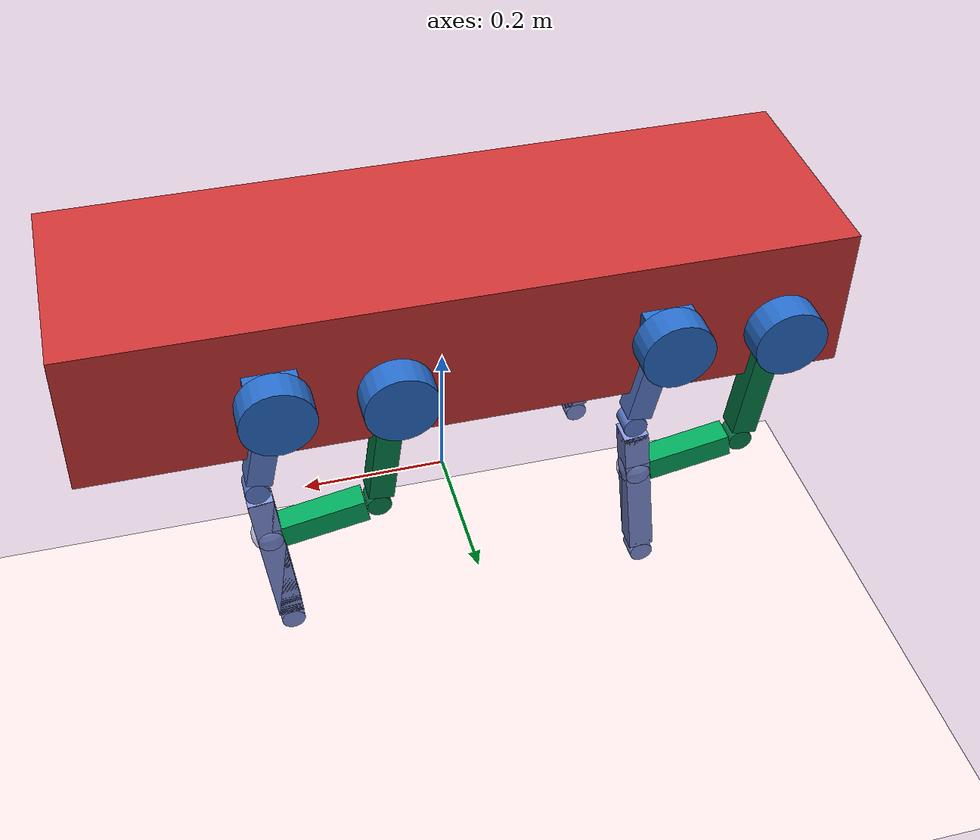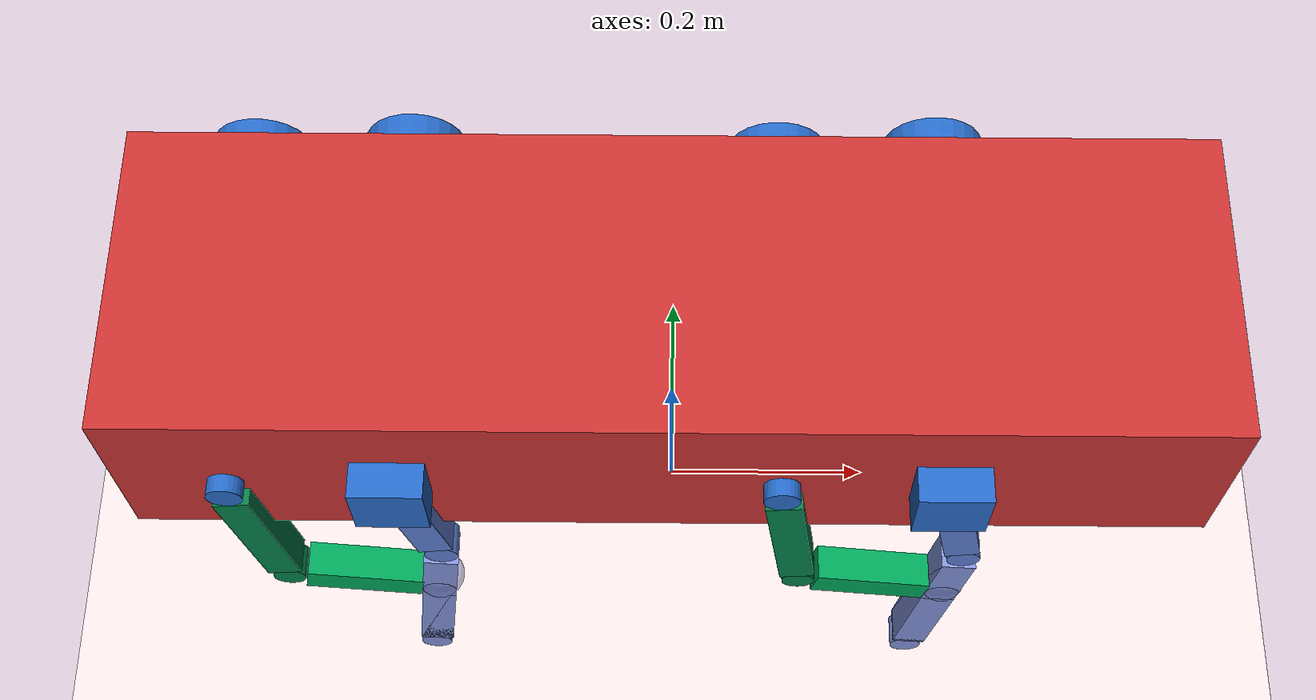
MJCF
<?xml version="1.0" encoding="utf-8"?>
<mujoco model="quadruped_torso">
  <compiler angle="radian" inertiafromgeom="true" coordinate="local" />
  <option timestep="0.01" gravity="0 0 -9.81" />
  <worldbody>
    <geom name="floor" type="plane" size="2 2 0.1" pos="0 0 -0.5" rgba="6 0.9 0.9 1" />
    <body name="torso" pos="0 0 0.32" quat="1 0 0 0">
      <geom name="torso_body" type="box" size="0.5 0.15 0.1" rgba="0.8 0.2 0.2 1" />
      <inertial pos="0 0 0" mass="2.0" diaginertia="0.1 0.2 0.1" />
      <body name="leg_front_right" pos="0.25 0.15 0">
        <geom name="G_vis0_front_right" type="box" rgba="0.1568627450980392 0.42745098039215684 0.8 1.0" contype="1" conaffinity="1" pos="0.0 0.0 0.0" quat="1.0 0.0 0.0 0.0" size="0.0335 0.0335 0.0335" />
        <inertial pos="0.0 0.0 0.0" mass="0.04903493747122909" diaginertia="3.66863057180579e-05 3.66863057180579e-05 3.66863057180579e-05" />
        <body name="L6_front_right" pos="0.0 0.0 0.0" quat="0.09853761796664233 5.490065323952282e-17 0.9951333266680702 5.490065323952282e-17">
          <joint name="Main_ground_front_right" type="hinge" axis="0 1 0" range="-3.141592653589793 3.141592653589793" damping="0.1" />
          <geom name="L6_vis0_front_right" type="box" rgba="0.37254901960784315 0.5019607843137255 0.8352941176470589 1.0" contype="1" conaffinity="1" pos="0.0 0.0 0.07649" quat="1.0 0.0 0.0 0.0" size="0.01675 0.01675 0.059735292703891774" />
          <inertial pos="0.0 0.0 0.07649" mass="0.09693685001461892" diaginertia="0.0001243657034733558 0.0001243657034733558 1.8131229988151018e-05" />
          <body name="L5_front_right" pos="3.9850810789398094e-17 0.0 0.15297058540778355" quat="0.9874789974914651 0.0 0.15775052935965425 0.0">
            <joint name="Main_knee_front_right" type="hinge" axis="0 1 0" range="-3.141592653589793 3.141592653589793" damping="0.1" />
            <geom name="L5_vis0_front_right" type="box" rgba="0.5176470588235295 0.5843137254901961 0.8705882352941177 1.0" contype="1" conaffinity="1" pos="3.122502256758253e-17 0.0 0.1258967831201417" quat="1.0 0.0 0.0 0.0" size="0.016750000417232513 0.016750000417232513 0.10914678270290917" />
            <geom name="L5_vis1_front_right" type="box" rgba="0.5176470588235295 0.5843137254901961 0.8705882352941177 1.0" contype="1" conaffinity="1" pos="1.3877787807814457e-17 0.0 0.04406387409204959" quat="1.0 0.0 0.0 0.0" size="0.016750000417232513 0.016750000417232513 0.02731387367481708" />
            <geom name="L5_vis2_front_right" type="box" rgba="0.5176470588235295 0.5843137254901961 0.8705882352941177 1.0" contype="1" conaffinity="1" pos="3.8163916471489756e-17 0.0 0.16996065721219128" quat="1.0 0.0 0.0 0.0" size="0.016750000417232513 0.016750000417232513 0.06508290861085958" />
            <inertial pos="0.0 0.0 0.11331" mass="0.20430196607254722" diaginertia="0.0318890529501516 0.03195007230862345 9.923234039844751e-05" />
            <body name="EE_front_right" pos="5.551115123125783e-17 0.0 0.2517935662402834" quat="0.05967898086042496 5.74689170874561e-17 0.9982176211846098 5.74689170874561e-17">
              <geom name="EE_vis0_front_right" type="sphere" rgba="0.6431372549019608 0.6666666666666666 0.9058823529411765 1.0" contype="1" conaffinity="1" pos="0.0 0.0 0.0" quat="1.0 0.0 0.0 0.0" size="0.002142857142857143" />
              <inertial pos="0.0 0.0 0.0" mass="2.979933439782622e-05" diaginertia="5.473347134294612e-11 5.473347134294612e-11 5.473347134294612e-11" />
            </body>
            <body name="Main_ee_L5Unit_front_right" pos="5.551115123125783e-17 0.0 0.2517935662402834" quat="0.04219941206070872 0.04219941206070862 0.705846449039542 -0.7058464490395416">
              <geom name="Main_ee_L5Unit_vis0_front_right" type="cylinder" rgba="0.5176470588235295 0.5843137254901961 0.8705882352941177 0.9" contype="1" conaffinity="1" size="0.016 0.015" />
              <inertial pos="0 0 0" mass="0.1" diaginertia="0.00065 0.00065 0.0008" />
            </body>
            <body name="Main_connection_2_L5Pseudo_front_right" pos="5.551115123125783e-17 0.0 0.08812774818409916" quat="0.7309513322872746 0.0 -0.6824295933116165 0.0">
              <geom name="Main_connection_2_L5Pseudo_vis0_front_right" type="sphere" rgba="0.5176470588235295 0.5843137254901961 0.8705882352941177 0.5" contype="1" conaffinity="1" size="0.02392857202461788" />
              <inertial pos="0 0 0" mass="0.05" diaginertia="1.145153118274651e-05 1.145153118274651e-05 1.145153118274651e-05" />
            </body>
          </body>
          <body name="Main_knee_L6Unit_front_right" pos="3.9850810789398094e-17 0.0 0.15297058540778355" quat="0.6982530954055087 0.6982530954055086 0.11154646904597909 -0.11154646904597906">
            <geom name="Main_knee_L6Unit_vis0_front_right" type="cylinder" rgba="0.37254901960784315 0.5019607843137255 0.8352941176470589 0.9" contype="1" conaffinity="1" size="0.016 0.015" />
            <inertial pos="0 0 0" mass="0.1" diaginertia="0.00065 0.00065 0.0008" />
          </body>
        </body>
        <body name="Main_ground_GActuator_front_right" pos="0.0 0.036750000000000005 0.0" quat="0.0696766178661822 0.06967661786618214 0.7036655234717202 -0.7036655234717203">
          <geom name="Main_ground_GActuator_vis0_front_right" type="cylinder" rgba="0.1568627450980392 0.42745098039215684 0.8 0.9" contype="1" conaffinity="1" size="0.048 0.02" />
          <inertial pos="0 0 0" mass="0.44" diaginertia="0.0067466666666666664 0.0067466666666666664 0.01056" />
        </body>
        <body name="Main_ground_GUnit_front_right" pos="0.0 0.0 0.0" quat="0.0696766178661822 0.06967661786618214 0.7036655234717202 -0.7036655234717203">
          <geom name="Main_ground_GUnit_vis0_front_right" type="cylinder" rgba="0.1568627450980392 0.42745098039215684 0.8 0.9" contype="1" conaffinity="1" size="0.01675 0.01675" />
          <inertial pos="0 0 0" mass="0.1" diaginertia="0.0006979166666666668 0.0006979166666666668 0.0008375000000000001" />
        </body>
        <body name="L3_front_right" pos="-0.15 0.0 -0.01" quat="0.06213744155632902 5.73091937666162e-17 0.9980676020975903 5.73091937666162e-17">
          <joint name="Ground_connection_front_right" type="hinge" axis="0 1 0" range="-3.141592653589793 3.141592653589793" damping="0.1" />
          <geom name="L3_vis0_front_right" type="box" rgba="0.01568627450980392 0.5058823529411764 0.29411764705882354 1.0" contype="1" conaffinity="1" pos="0.0 0.0 0.10078" quat="1.0 0.0 0.0 0.0" size="0.01675 0.01675 0.08402822185373188" />
          <inertial pos="0.0 0.0 0.10078" mass="0.136358771676357" diaginertia="0.0003336837577936235 0.0003336837577936235 2.5504771918965276e-05" />
          <body name="L4_front_right" pos="8.326672684688674e-17 0.0 0.20155644370746378" quat="0.8085047933142612 0.0 -0.5884895914014655 0.0">
            <joint name="branch_1_front_right" type="hinge" axis="0 1 0" range="-3.141592653589793 3.141592653589793" damping="0.1" />
            <geom name="L4_vis0_front_right" type="box" rgba="0.0 0.6627450980392157 0.3607843137254902 1.0" contype="1" conaffinity="1" pos="-0.0 0.0 0.07355" quat="1.0 0.0 0.0 0.0" size="0.01675 0.01675 0.056796753837270064" />
            <inertial pos="-0.0 0.0 0.07355" mass="0.09216826701314518" diaginertia="0.0001077273072689468 0.0001077273072689468 1.723930627591703e-05" />
            <body name="Main_connection_2_L4Pseudo_front_right" pos="-2.7755575615628914e-17 0.0 0.14709350767454013" quat="1.0 0.0 0.0 0.0">
              <joint name="Main_connection_2_L4_revolute_front_right" type="hinge" axis="0 1 0" range="-3.141592653589793 3.141592653589793" damping="0.1" />
              <geom name="Main_connection_2_L4Pseudo_vis0_front_right" type="sphere" rgba="0.0 0.6627450980392157 0.3607843137254902 0.5" contype="1" conaffinity="1" size="0.02392857142857143" />
              <inertial pos="0 0 0" mass="0.05" diaginertia="1.1451530612244902e-05 1.1451530612244902e-05 1.1451530612244902e-05" />
            </body>
          </body>
          <body name="branch_1_L3Unit_front_right" pos="8.326672684688674e-17 0.0 0.20155644370746378" quat="0.5716992219743421 0.571699221974342 -0.4161249807376769 0.4161249807376769">
            <geom name="branch_1_L3Unit_vis0_front_right" type="cylinder" rgba="0.01568627450980392 0.5058823529411764 0.29411764705882354 0.9" contype="1" conaffinity="1" size="0.016 0.015" />
            <inertial pos="0 0 0" mass="0.1" diaginertia="0.00065 0.00065 0.0008" />
          </body>
        </body>
        <body name="Ground_connection_GActuator_front_right" pos="-0.15 0.036750000000000005 -0.01" quat="0.04393780629006307 0.04393780629006299 0.7057403695258029 -0.705740369525803">
          <geom name="Ground_connection_GActuator_vis0_front_right" type="cylinder" rgba="0.1568627450980392 0.42745098039215684 0.8 0.9" contype="1" conaffinity="1" size="0.048 0.02" />
          <inertial pos="0 0 0" mass="0.44" diaginertia="0.0067466666666666664 0.0067466666666666664 0.01056" />
        </body>
        <body name="Ground_connection_GUnit_front_right" pos="-0.15 0.0 -0.01" quat="0.04393780629006307 0.04393780629006299 0.7057403695258029 -0.705740369525803">
          <geom name="Ground_connection_GUnit_vis0_front_right" type="cylinder" rgba="0.1568627450980392 0.42745098039215684 0.8 0.9" contype="1" conaffinity="1" size="0.01675 0.01675" />
          <inertial pos="0 0 0" mass="0.1" diaginertia="0.0006979166666666668 0.0006979166666666668 0.0008375000000000001" />
        </body>
      </body>
      <body name="leg_front_left" pos="0.25 -0.15 0">
        <geom name="G_vis0_front_left" type="box" rgba="0.1568627450980392 0.42745098039215684 0.8 1.0" contype="1" conaffinity="1" pos="0.0 0.0 0.0" quat="1.0 0.0 0.0 0.0" size="0.0335 0.0335 0.0335" />
        <inertial pos="0.0 0.0 0.0" mass="0.04903493747122909" diaginertia="3.66863057180579e-05 3.66863057180579e-05 3.66863057180579e-05" />
        <body name="L6_front_left" pos="0.0 0.0 0.0" quat="0.09853761796664233 5.490065323952282e-17 0.9951333266680702 5.490065323952282e-17">
          <joint name="Main_ground_front_left" type="hinge" axis="0 1 0" range="-3.141592653589793 3.141592653589793" damping="0.1" />
          <geom name="L6_vis0_front_left" type="box" rgba="0.37254901960784315 0.5019607843137255 0.8352941176470589 1.0" contype="1" conaffinity="1" pos="0.0 0.0 0.07649" quat="1.0 0.0 0.0 0.0" size="0.01675 0.01675 0.059735292703891774" />
          <inertial pos="0.0 0.0 0.07649" mass="0.09693685001461892" diaginertia="0.0001243657034733558 0.0001243657034733558 1.8131229988151018e-05" />
          <body name="L5_front_left" pos="3.9850810789398094e-17 0.0 0.15297058540778355" quat="0.9874789974914651 0.0 0.15775052935965425 0.0">
            <joint name="Main_knee_front_left" type="hinge" axis="0 1 0" range="-3.141592653589793 3.141592653589793" damping="0.1" />
            <geom name="L5_vis0_front_left" type="box" rgba="0.5176470588235295 0.5843137254901961 0.8705882352941177 1.0" contype="1" conaffinity="1" pos="3.122502256758253e-17 0.0 0.1258967831201417" quat="1.0 0.0 0.0 0.0" size="0.016750000417232513 0.016750000417232513 0.10914678270290917" />
            <geom name="L5_vis1_front_left" type="box" rgba="0.5176470588235295 0.5843137254901961 0.8705882352941177 1.0" contype="1" conaffinity="1" pos="1.3877787807814457e-17 0.0 0.04406387409204959" quat="1.0 0.0 0.0 0.0" size="0.016750000417232513 0.016750000417232513 0.02731387367481708" />
            <geom name="L5_vis2_front_left" type="box" rgba="0.5176470588235295 0.5843137254901961 0.8705882352941177 1.0" contype="1" conaffinity="1" pos="3.8163916471489756e-17 0.0 0.16996065721219128" quat="1.0 0.0 0.0 0.0" size="0.016750000417232513 0.016750000417232513 0.06508290861085958" />
            <inertial pos="0.0 0.0 0.11331" mass="0.20430196607254722" diaginertia="0.0318890529501516 0.03195007230862345 9.923234039844751e-05" />
            <body name="EE_front_left" pos="5.551115123125783e-17 0.0 0.2517935662402834" quat="0.05967898086042496 5.74689170874561e-17 0.9982176211846098 5.74689170874561e-17">
              <geom name="EE_vis0_front_left" type="sphere" rgba="0.6431372549019608 0.6666666666666666 0.9058823529411765 1.0" contype="1" conaffinity="1" pos="0.0 0.0 0.0" quat="1.0 0.0 0.0 0.0" size="0.002142857142857143" />
              <inertial pos="0.0 0.0 0.0" mass="2.979933439782622e-05" diaginertia="5.473347134294612e-11 5.473347134294612e-11 5.473347134294612e-11" />
            </body>
            <body name="Main_ee_L5Unit_front_left" pos="5.551115123125783e-17 0.0 0.2517935662402834" quat="0.04219941206070872 0.04219941206070862 0.705846449039542 -0.7058464490395416">
              <geom name="Main_ee_L5Unit_vis0_front_left" type="cylinder" rgba="0.5176470588235295 0.5843137254901961 0.8705882352941177 0.9" contype="1" conaffinity="1" size="0.016 0.015" />
              <inertial pos="0 0 0" mass="0.1" diaginertia="0.00065 0.00065 0.0008" />
            </body>
            <body name="Main_connection_2_L5Pseudo_front_left" pos="5.551115123125783e-17 0.0 0.08812774818409916" quat="0.7309513322872746 0.0 -0.6824295933116165 0.0">
              <geom name="Main_connection_2_L5Pseudo_vis0_front_left" type="sphere" rgba="0.5176470588235295 0.5843137254901961 0.8705882352941177 0.5" contype="1" conaffinity="1" size="0.02392857202461788" />
              <inertial pos="0 0 0" mass="0.05" diaginertia="1.145153118274651e-05 1.145153118274651e-05 1.145153118274651e-05" />
            </body>
          </body>
          <body name="Main_knee_L6Unit_front_left" pos="3.9850810789398094e-17 0.0 0.15297058540778355" quat="0.6982530954055087 0.6982530954055086 0.11154646904597909 -0.11154646904597906">
            <geom name="Main_knee_L6Unit_vis0_front_left" type="cylinder" rgba="0.37254901960784315 0.5019607843137255 0.8352941176470589 0.9" contype="1" conaffinity="1" size="0.016 0.015" />
            <inertial pos="0 0 0" mass="0.1" diaginertia="0.00065 0.00065 0.0008" />
          </body>
        </body>
        <body name="Main_ground_GActuator_front_left" pos="0.0 0.036750000000000005 0.0" quat="0.0696766178661822 0.06967661786618214 0.7036655234717202 -0.7036655234717203">
          <geom name="Main_ground_GActuator_vis0_front_left" type="cylinder" rgba="0.1568627450980392 0.42745098039215684 0.8 0.9" contype="1" conaffinity="1" size="0.048 0.02" />
          <inertial pos="0 0 0" mass="0.44" diaginertia="0.0067466666666666664 0.0067466666666666664 0.01056" />
        </body>
        <body name="Main_ground_GUnit_front_left" pos="0.0 0.0 0.0" quat="0.0696766178661822 0.06967661786618214 0.7036655234717202 -0.7036655234717203">
          <geom name="Main_ground_GUnit_vis0_front_left" type="cylinder" rgba="0.1568627450980392 0.42745098039215684 0.8 0.9" contype="1" conaffinity="1" size="0.01675 0.01675" />
          <inertial pos="0 0 0" mass="0.1" diaginertia="0.0006979166666666668 0.0006979166666666668 0.0008375000000000001" />
        </body>
        <body name="L3_front_left" pos="-0.15 0.0 -0.01" quat="0.06213744155632902 5.73091937666162e-17 0.9980676020975903 5.73091937666162e-17">
          <joint name="Ground_connection_front_left" type="hinge" axis="0 1 0" range="-3.141592653589793 3.141592653589793" damping="0.1" />
          <geom name="L3_vis0_front_left" type="box" rgba="0.01568627450980392 0.5058823529411764 0.29411764705882354 1.0" contype="1" conaffinity="1" pos="0.0 0.0 0.10078" quat="1.0 0.0 0.0 0.0" size="0.01675 0.01675 0.08402822185373188" />
          <inertial pos="0.0 0.0 0.10078" mass="0.136358771676357" diaginertia="0.0003336837577936235 0.0003336837577936235 2.5504771918965276e-05" />
          <body name="L4_front_left" pos="8.326672684688674e-17 0.0 0.20155644370746378" quat="0.8085047933142612 0.0 -0.5884895914014655 0.0">
            <joint name="branch_1_front_left" type="hinge" axis="0 1 0" range="-3.141592653589793 3.141592653589793" damping="0.1" />
            <geom name="L4_vis0_front_left" type="box" rgba="0.0 0.6627450980392157 0.3607843137254902 1.0" contype="1" conaffinity="1" pos="-0.0 0.0 0.07355" quat="1.0 0.0 0.0 0.0" size="0.01675 0.01675 0.056796753837270064" />
            <inertial pos="-0.0 0.0 0.07355" mass="0.09216826701314518" diaginertia="0.0001077273072689468 0.0001077273072689468 1.723930627591703e-05" />
            <body name="Main_connection_2_L4Pseudo_front_left" pos="-2.7755575615628914e-17 0.0 0.14709350767454013" quat="1.0 0.0 0.0 0.0">
              <joint name="Main_connection_2_L4_revolute_front_left" type="hinge" axis="0 1 0" range="-3.141592653589793 3.141592653589793" damping="0.1" />
              <geom name="Main_connection_2_L4Pseudo_vis0_front_left" type="sphere" rgba="0.0 0.6627450980392157 0.3607843137254902 0.5" contype="1" conaffinity="1" size="0.02392857142857143" />
              <inertial pos="0 0 0" mass="0.05" diaginertia="1.1451530612244902e-05 1.1451530612244902e-05 1.1451530612244902e-05" />
            </body>
          </body>
          <body name="branch_1_L3Unit_front_left" pos="8.326672684688674e-17 0.0 0.20155644370746378" quat="0.5716992219743421 0.571699221974342 -0.4161249807376769 0.4161249807376769">
            <geom name="branch_1_L3Unit_vis0_front_left" type="cylinder" rgba="0.01568627450980392 0.5058823529411764 0.29411764705882354 0.9" contype="1" conaffinity="1" size="0.016 0.015" />
            <inertial pos="0 0 0" mass="0.1" diaginertia="0.00065 0.00065 0.0008" />
          </body>
        </body>
        <body name="Ground_connection_GActuator_front_left" pos="-0.15 0.036750000000000005 -0.01" quat="0.04393780629006307 0.04393780629006299 0.7057403695258029 -0.705740369525803">
          <geom name="Ground_connection_GActuator_vis0_front_left" type="cylinder" rgba="0.1568627450980392 0.42745098039215684 0.8 0.9" contype="1" conaffinity="1" size="0.048 0.02" />
          <inertial pos="0 0 0" mass="0.44" diaginertia="0.0067466666666666664 0.0067466666666666664 0.01056" />
        </body>
        <body name="Ground_connection_GUnit_front_left" pos="-0.15 0.0 -0.01" quat="0.04393780629006307 0.04393780629006299 0.7057403695258029 -0.705740369525803">
          <geom name="Ground_connection_GUnit_vis0_front_left" type="cylinder" rgba="0.1568627450980392 0.42745098039215684 0.8 0.9" contype="1" conaffinity="1" size="0.01675 0.01675" />
          <inertial pos="0 0 0" mass="0.1" diaginertia="0.0006979166666666668 0.0006979166666666668 0.0008375000000000001" />
        </body>
      </body>
      <body name="leg_rear_right" pos="-0.25 0.15 0">
        <geom name="G_vis0_rear_right" type="box" rgba="0.1568627450980392 0.42745098039215684 0.8 1.0" contype="1" conaffinity="1" pos="0.0 0.0 0.0" quat="1.0 0.0 0.0 0.0" size="0.0335 0.0335 0.0335" />
        <inertial pos="0.0 0.0 0.0" mass="0.04903493747122909" diaginertia="3.66863057180579e-05 3.66863057180579e-05 3.66863057180579e-05" />
        <body name="L6_rear_right" pos="0.0 0.0 0.0" quat="0.09853761796664233 5.490065323952282e-17 0.9951333266680702 5.490065323952282e-17">
          <joint name="Main_ground_rear_right" type="hinge" axis="0 1 0" range="-3.141592653589793 3.141592653589793" damping="0.1" />
          <geom name="L6_vis0_rear_right" type="box" rgba="0.37254901960784315 0.5019607843137255 0.8352941176470589 1.0" contype="1" conaffinity="1" pos="0.0 0.0 0.07649" quat="1.0 0.0 0.0 0.0" size="0.01675 0.01675 0.059735292703891774" />
          <inertial pos="0.0 0.0 0.07649" mass="0.09693685001461892" diaginertia="0.0001243657034733558 0.0001243657034733558 1.8131229988151018e-05" />
          <body name="L5_rear_right" pos="3.9850810789398094e-17 0.0 0.15297058540778355" quat="0.9874789974914651 0.0 0.15775052935965425 0.0">
            <joint name="Main_knee_rear_right" type="hinge" axis="0 1 0" range="-3.141592653589793 3.141592653589793" damping="0.1" />
            <geom name="L5_vis0_rear_right" type="box" rgba="0.5176470588235295 0.5843137254901961 0.8705882352941177 1.0" contype="1" conaffinity="1" pos="3.122502256758253e-17 0.0 0.1258967831201417" quat="1.0 0.0 0.0 0.0" size="0.016750000417232513 0.016750000417232513 0.10914678270290917" />
            <geom name="L5_vis1_rear_right" type="box" rgba="0.5176470588235295 0.5843137254901961 0.8705882352941177 1.0" contype="1" conaffinity="1" pos="1.3877787807814457e-17 0.0 0.04406387409204959" quat="1.0 0.0 0.0 0.0" size="0.016750000417232513 0.016750000417232513 0.02731387367481708" />
            <geom name="L5_vis2_rear_right" type="box" rgba="0.5176470588235295 0.5843137254901961 0.8705882352941177 1.0" contype="1" conaffinity="1" pos="3.8163916471489756e-17 0.0 0.16996065721219128" quat="1.0 0.0 0.0 0.0" size="0.016750000417232513 0.016750000417232513 0.06508290861085958" />
            <inertial pos="0.0 0.0 0.11331" mass="0.20430196607254722" diaginertia="0.0318890529501516 0.03195007230862345 9.923234039844751e-05" />
            <body name="EE_rear_right" pos="5.551115123125783e-17 0.0 0.2517935662402834" quat="0.05967898086042496 5.74689170874561e-17 0.9982176211846098 5.74689170874561e-17">
              <geom name="EE_vis0_rear_right" type="sphere" rgba="0.6431372549019608 0.6666666666666666 0.9058823529411765 1.0" contype="1" conaffinity="1" pos="0.0 0.0 0.0" quat="1.0 0.0 0.0 0.0" size="0.002142857142857143" />
              <inertial pos="0.0 0.0 0.0" mass="2.979933439782622e-05" diaginertia="5.473347134294612e-11 5.473347134294612e-11 5.473347134294612e-11" />
            </body>
            <body name="Main_ee_L5Unit_rear_right" pos="5.551115123125783e-17 0.0 0.2517935662402834" quat="0.04219941206070872 0.04219941206070862 0.705846449039542 -0.7058464490395416">
              <geom name="Main_ee_L5Unit_vis0_rear_right" type="cylinder" rgba="0.5176470588235295 0.5843137254901961 0.8705882352941177 0.9" contype="1" conaffinity="1" size="0.016 0.015" />
              <inertial pos="0 0 0" mass="0.1" diaginertia="0.00065 0.00065 0.0008" />
            </body>
            <body name="Main_connection_2_L5Pseudo_rear_right" pos="5.551115123125783e-17 0.0 0.08812774818409916" quat="0.7309513322872746 0.0 -0.6824295933116165 0.0">
              <geom name="Main_connection_2_L5Pseudo_vis0_rear_right" type="sphere" rgba="0.5176470588235295 0.5843137254901961 0.8705882352941177 0.5" contype="1" conaffinity="1" size="0.02392857202461788" />
              <inertial pos="0 0 0" mass="0.05" diaginertia="1.145153118274651e-05 1.145153118274651e-05 1.145153118274651e-05" />
            </body>
          </body>
          <body name="Main_knee_L6Unit_rear_right" pos="3.9850810789398094e-17 0.0 0.15297058540778355" quat="0.6982530954055087 0.6982530954055086 0.11154646904597909 -0.11154646904597906">
            <geom name="Main_knee_L6Unit_vis0_rear_right" type="cylinder" rgba="0.37254901960784315 0.5019607843137255 0.8352941176470589 0.9" contype="1" conaffinity="1" size="0.016 0.015" />
            <inertial pos="0 0 0" mass="0.1" diaginertia="0.00065 0.00065 0.0008" />
          </body>
        </body>
        <body name="Main_ground_GActuator_rear_right" pos="0.0 0.036750000000000005 0.0" quat="0.0696766178661822 0.06967661786618214 0.7036655234717202 -0.7036655234717203">
          <geom name="Main_ground_GActuator_vis0_rear_right" type="cylinder" rgba="0.1568627450980392 0.42745098039215684 0.8 0.9" contype="1" conaffinity="1" size="0.048 0.02" />
          <inertial pos="0 0 0" mass="0.44" diaginertia="0.0067466666666666664 0.0067466666666666664 0.01056" />
        </body>
        <body name="Main_ground_GUnit_rear_right" pos="0.0 0.0 0.0" quat="0.0696766178661822 0.06967661786618214 0.7036655234717202 -0.7036655234717203">
          <geom name="Main_ground_GUnit_vis0_rear_right" type="cylinder" rgba="0.1568627450980392 0.42745098039215684 0.8 0.9" contype="1" conaffinity="1" size="0.01675 0.01675" />
          <inertial pos="0 0 0" mass="0.1" diaginertia="0.0006979166666666668 0.0006979166666666668 0.0008375000000000001" />
        </body>
        <body name="L3_rear_right" pos="-0.15 0.0 -0.01" quat="0.06213744155632902 5.73091937666162e-17 0.9980676020975903 5.73091937666162e-17">
          <joint name="Ground_connection_rear_right" type="hinge" axis="0 1 0" range="-3.141592653589793 3.141592653589793" damping="0.1" />
          <geom name="L3_vis0_rear_right" type="box" rgba="0.01568627450980392 0.5058823529411764 0.29411764705882354 1.0" contype="1" conaffinity="1" pos="0.0 0.0 0.10078" quat="1.0 0.0 0.0 0.0" size="0.01675 0.01675 0.08402822185373188" />
          <inertial pos="0.0 0.0 0.10078" mass="0.136358771676357" diaginertia="0.0003336837577936235 0.0003336837577936235 2.5504771918965276e-05" />
          <body name="L4_rear_right" pos="8.326672684688674e-17 0.0 0.20155644370746378" quat="0.8085047933142612 0.0 -0.5884895914014655 0.0">
            <joint name="branch_1_rear_right" type="hinge" axis="0 1 0" range="-3.141592653589793 3.141592653589793" damping="0.1" />
            <geom name="L4_vis0_rear_right" type="box" rgba="0.0 0.6627450980392157 0.3607843137254902 1.0" contype="1" conaffinity="1" pos="-0.0 0.0 0.07355" quat="1.0 0.0 0.0 0.0" size="0.01675 0.01675 0.056796753837270064" />
            <inertial pos="-0.0 0.0 0.07355" mass="0.09216826701314518" diaginertia="0.0001077273072689468 0.0001077273072689468 1.723930627591703e-05" />
            <body name="Main_connection_2_L4Pseudo_rear_right" pos="-2.7755575615628914e-17 0.0 0.14709350767454013" quat="1.0 0.0 0.0 0.0">
              <joint name="Main_connection_2_L4_revolute_rear_right" type="hinge" axis="0 1 0" range="-3.141592653589793 3.141592653589793" damping="0.1" />
              <geom name="Main_connection_2_L4Pseudo_vis0_rear_right" type="sphere" rgba="0.0 0.6627450980392157 0.3607843137254902 0.5" contype="1" conaffinity="1" size="0.02392857142857143" />
              <inertial pos="0 0 0" mass="0.05" diaginertia="1.1451530612244902e-05 1.1451530612244902e-05 1.1451530612244902e-05" />
            </body>
          </body>
          <body name="branch_1_L3Unit_rear_right" pos="8.326672684688674e-17 0.0 0.20155644370746378" quat="0.5716992219743421 0.571699221974342 -0.4161249807376769 0.4161249807376769">
            <geom name="branch_1_L3Unit_vis0_rear_right" type="cylinder" rgba="0.01568627450980392 0.5058823529411764 0.29411764705882354 0.9" contype="1" conaffinity="1" size="0.016 0.015" />
            <inertial pos="0 0 0" mass="0.1" diaginertia="0.00065 0.00065 0.0008" />
          </body>
        </body>
        <body name="Ground_connection_GActuator_rear_right" pos="-0.15 0.036750000000000005 -0.01" quat="0.04393780629006307 0.04393780629006299 0.7057403695258029 -0.705740369525803">
          <geom name="Ground_connection_GActuator_vis0_rear_right" type="cylinder" rgba="0.1568627450980392 0.42745098039215684 0.8 0.9" contype="1" conaffinity="1" size="0.048 0.02" />
          <inertial pos="0 0 0" mass="0.44" diaginertia="0.0067466666666666664 0.0067466666666666664 0.01056" />
        </body>
        <body name="Ground_connection_GUnit_rear_right" pos="-0.15 0.0 -0.01" quat="0.04393780629006307 0.04393780629006299 0.7057403695258029 -0.705740369525803">
          <geom name="Ground_connection_GUnit_vis0_rear_right" type="cylinder" rgba="0.1568627450980392 0.42745098039215684 0.8 0.9" contype="1" conaffinity="1" size="0.01675 0.01675" />
          <inertial pos="0 0 0" mass="0.1" diaginertia="0.0006979166666666668 0.0006979166666666668 0.0008375000000000001" />
        </body>
      </body>
      <body name="leg_rear_left" pos="-0.25 -0.15 0">
        <geom name="G_vis0_rear_left" type="box" rgba="0.1568627450980392 0.42745098039215684 0.8 1.0" contype="1" conaffinity="1" pos="0.0 0.0 0.0" quat="1.0 0.0 0.0 0.0" size="0.0335 0.0335 0.0335" />
        <inertial pos="0.0 0.0 0.0" mass="0.04903493747122909" diaginertia="3.66863057180579e-05 3.66863057180579e-05 3.66863057180579e-05" />
        <body name="L6_rear_left" pos="0.0 0.0 0.0" quat="0.09853761796664233 5.490065323952282e-17 0.9951333266680702 5.490065323952282e-17">
          <joint name="Main_ground_rear_left" type="hinge" axis="0 1 0" range="-3.141592653589793 3.141592653589793" damping="0.1" />
          <geom name="L6_vis0_rear_left" type="box" rgba="0.37254901960784315 0.5019607843137255 0.8352941176470589 1.0" contype="1" conaffinity="1" pos="0.0 0.0 0.07649" quat="1.0 0.0 0.0 0.0" size="0.01675 0.01675 0.059735292703891774" />
          <inertial pos="0.0 0.0 0.07649" mass="0.09693685001461892" diaginertia="0.0001243657034733558 0.0001243657034733558 1.8131229988151018e-05" />
          <body name="L5_rear_left" pos="3.9850810789398094e-17 0.0 0.15297058540778355" quat="0.9874789974914651 0.0 0.15775052935965425 0.0">
            <joint name="Main_knee_rear_left" type="hinge" axis="0 1 0" range="-3.141592653589793 3.141592653589793" damping="0.1" />
            <geom name="L5_vis0_rear_left" type="box" rgba="0.5176470588235295 0.5843137254901961 0.8705882352941177 1.0" contype="1" conaffinity="1" pos="3.122502256758253e-17 0.0 0.1258967831201417" quat="1.0 0.0 0.0 0.0" size="0.016750000417232513 0.016750000417232513 0.10914678270290917" />
            <geom name="L5_vis1_rear_left" type="box" rgba="0.5176470588235295 0.5843137254901961 0.8705882352941177 1.0" contype="1" conaffinity="1" pos="1.3877787807814457e-17 0.0 0.04406387409204959" quat="1.0 0.0 0.0 0.0" size="0.016750000417232513 0.016750000417232513 0.02731387367481708" />
            <geom name="L5_vis2_rear_left" type="box" rgba="0.5176470588235295 0.5843137254901961 0.8705882352941177 1.0" contype="1" conaffinity="1" pos="3.8163916471489756e-17 0.0 0.16996065721219128" quat="1.0 0.0 0.0 0.0" size="0.016750000417232513 0.016750000417232513 0.06508290861085958" />
            <inertial pos="0.0 0.0 0.11331" mass="0.20430196607254722" diaginertia="0.0318890529501516 0.03195007230862345 9.923234039844751e-05" />
            <body name="EE_rear_left" pos="5.551115123125783e-17 0.0 0.2517935662402834" quat="0.05967898086042496 5.74689170874561e-17 0.9982176211846098 5.74689170874561e-17">
              <geom name="EE_vis0_rear_left" type="sphere" rgba="0.6431372549019608 0.6666666666666666 0.9058823529411765 1.0" contype="1" conaffinity="1" pos="0.0 0.0 0.0" quat="1.0 0.0 0.0 0.0" size="0.002142857142857143" />
              <inertial pos="0.0 0.0 0.0" mass="2.979933439782622e-05" diaginertia="5.473347134294612e-11 5.473347134294612e-11 5.473347134294612e-11" />
            </body>
            <body name="Main_ee_L5Unit_rear_left" pos="5.551115123125783e-17 0.0 0.2517935662402834" quat="0.04219941206070872 0.04219941206070862 0.705846449039542 -0.7058464490395416">
              <geom name="Main_ee_L5Unit_vis0_rear_left" type="cylinder" rgba="0.5176470588235295 0.5843137254901961 0.8705882352941177 0.9" contype="1" conaffinity="1" size="0.016 0.015" />
              <inertial pos="0 0 0" mass="0.1" diaginertia="0.00065 0.00065 0.0008" />
            </body>
            <body name="Main_connection_2_L5Pseudo_rear_left" pos="5.551115123125783e-17 0.0 0.08812774818409916" quat="0.7309513322872746 0.0 -0.6824295933116165 0.0">
              <geom name="Main_connection_2_L5Pseudo_vis0_rear_left" type="sphere" rgba="0.5176470588235295 0.5843137254901961 0.8705882352941177 0.5" contype="1" conaffinity="1" size="0.02392857202461788" />
              <inertial pos="0 0 0" mass="0.05" diaginertia="1.145153118274651e-05 1.145153118274651e-05 1.145153118274651e-05" />
            </body>
          </body>
          <body name="Main_knee_L6Unit_rear_left" pos="3.9850810789398094e-17 0.0 0.15297058540778355" quat="0.6982530954055087 0.6982530954055086 0.11154646904597909 -0.11154646904597906">
            <geom name="Main_knee_L6Unit_vis0_rear_left" type="cylinder" rgba="0.37254901960784315 0.5019607843137255 0.8352941176470589 0.9" contype="1" conaffinity="1" size="0.016 0.015" />
            <inertial pos="0 0 0" mass="0.1" diaginertia="0.00065 0.00065 0.0008" />
          </body>
        </body>
        <body name="Main_ground_GActuator_rear_left" pos="0.0 0.036750000000000005 0.0" quat="0.0696766178661822 0.06967661786618214 0.7036655234717202 -0.7036655234717203">
          <geom name="Main_ground_GActuator_vis0_rear_left" type="cylinder" rgba="0.1568627450980392 0.42745098039215684 0.8 0.9" contype="1" conaffinity="1" size="0.048 0.02" />
          <inertial pos="0 0 0" mass="0.44" diaginertia="0.0067466666666666664 0.0067466666666666664 0.01056" />
        </body>
        <body name="Main_ground_GUnit_rear_left" pos="0.0 0.0 0.0" quat="0.0696766178661822 0.06967661786618214 0.7036655234717202 -0.7036655234717203">
          <geom name="Main_ground_GUnit_vis0_rear_left" type="cylinder" rgba="0.1568627450980392 0.42745098039215684 0.8 0.9" contype="1" conaffinity="1" size="0.01675 0.01675" />
          <inertial pos="0 0 0" mass="0.1" diaginertia="0.0006979166666666668 0.0006979166666666668 0.0008375000000000001" />
        </body>
        <body name="L3_rear_left" pos="-0.15 0.0 -0.01" quat="0.06213744155632902 5.73091937666162e-17 0.9980676020975903 5.73091937666162e-17">
          <joint name="Ground_connection_rear_left" type="hinge" axis="0 1 0" range="-3.141592653589793 3.141592653589793" damping="0.1" />
          <geom name="L3_vis0_rear_left" type="box" rgba="0.01568627450980392 0.5058823529411764 0.29411764705882354 1.0" contype="1" conaffinity="1" pos="0.0 0.0 0.10078" quat="1.0 0.0 0.0 0.0" size="0.01675 0.01675 0.08402822185373188" />
          <inertial pos="0.0 0.0 0.10078" mass="0.136358771676357" diaginertia="0.0003336837577936235 0.0003336837577936235 2.5504771918965276e-05" />
          <body name="L4_rear_left" pos="8.326672684688674e-17 0.0 0.20155644370746378" quat="0.8085047933142612 0.0 -0.5884895914014655 0.0">
            <joint name="branch_1_rear_left" type="hinge" axis="0 1 0" range="-3.141592653589793 3.141592653589793" damping="0.1" />
            <geom name="L4_vis0_rear_left" type="box" rgba="0.0 0.6627450980392157 0.3607843137254902 1.0" contype="1" conaffinity="1" pos="-0.0 0.0 0.07355" quat="1.0 0.0 0.0 0.0" size="0.01675 0.01675 0.056796753837270064" />
            <inertial pos="-0.0 0.0 0.07355" mass="0.09216826701314518" diaginertia="0.0001077273072689468 0.0001077273072689468 1.723930627591703e-05" />
            <body name="Main_connection_2_L4Pseudo_rear_left" pos="-2.7755575615628914e-17 0.0 0.14709350767454013" quat="1.0 0.0 0.0 0.0">
              <joint name="Main_connection_2_L4_revolute_rear_left" type="hinge" axis="0 1 0" range="-3.141592653589793 3.141592653589793" damping="0.1" />
              <geom name="Main_connection_2_L4Pseudo_vis0_rear_left" type="sphere" rgba="0.0 0.6627450980392157 0.3607843137254902 0.5" contype="1" conaffinity="1" size="0.02392857142857143" />
              <inertial pos="0 0 0" mass="0.05" diaginertia="1.1451530612244902e-05 1.1451530612244902e-05 1.1451530612244902e-05" />
            </body>
          </body>
          <body name="branch_1_L3Unit_rear_left" pos="8.326672684688674e-17 0.0 0.20155644370746378" quat="0.5716992219743421 0.571699221974342 -0.4161249807376769 0.4161249807376769">
            <geom name="branch_1_L3Unit_vis0_rear_left" type="cylinder" rgba="0.01568627450980392 0.5058823529411764 0.29411764705882354 0.9" contype="1" conaffinity="1" size="0.016 0.015" />
            <inertial pos="0 0 0" mass="0.1" diaginertia="0.00065 0.00065 0.0008" />
          </body>
        </body>
        <body name="Ground_connection_GActuator_rear_left" pos="-0.15 0.036750000000000005 -0.01" quat="0.04393780629006307 0.04393780629006299 0.7057403695258029 -0.705740369525803">
          <geom name="Ground_connection_GActuator_vis0_rear_left" type="cylinder" rgba="0.1568627450980392 0.42745098039215684 0.8 0.9" contype="1" conaffinity="1" size="0.048 0.02" />
          <inertial pos="0 0 0" mass="0.44" diaginertia="0.0067466666666666664 0.0067466666666666664 0.01056" />
        </body>
        <body name="Ground_connection_GUnit_rear_left" pos="-0.15 0.0 -0.01" quat="0.04393780629006307 0.04393780629006299 0.7057403695258029 -0.705740369525803">
          <geom name="Ground_connection_GUnit_vis0_rear_left" type="cylinder" rgba="0.1568627450980392 0.42745098039215684 0.8 0.9" contype="1" conaffinity="1" size="0.01675 0.01675" />
          <inertial pos="0 0 0" mass="0.1" diaginertia="0.0006979166666666668 0.0006979166666666668 0.0008375000000000001" />
        </body>
      </body>
    </body>
  </worldbody>
  <actuator>
    <motor name="Main_ground_motor_front_right" joint="Main_ground_front_right" gear="80" ctrlrange="-1.0 1.0" forcerange="-20 20" />
    <motor name="Ground_connection_motor_front_right" joint="Ground_connection_front_right" gear="80" ctrlrange="-1.0 1.0" forcerange="-20 20" />
    <motor name="Main_ground_motor_front_left" joint="Main_ground_front_left" gear="80" ctrlrange="-1.0 1.0" forcerange="-20 20" />
    <motor name="Ground_connection_motor_front_left" joint="Ground_connection_front_left" gear="80" ctrlrange="-1.0 1.0" forcerange="-20 20" />
    <motor name="Main_ground_motor_rear_right" joint="Main_ground_rear_right" gear="80" ctrlrange="-1.0 1.0" forcerange="-20 20" />
    <motor name="Ground_connection_motor_rear_right" joint="Ground_connection_rear_right" gear="80" ctrlrange="-1.0 1.0" forcerange="-20 20" />
    <motor name="Main_ground_motor_rear_left" joint="Main_ground_rear_left" gear="80" ctrlrange="-1.0 1.0" forcerange="-20 20" />
    <motor name="Ground_connection_motor_rear_left" joint="Ground_connection_rear_left" gear="80" ctrlrange="-1.0 1.0" forcerange="-20 20" />
  </actuator>
  <equality>
    <connect name="connect_Main_connection_2_L4Pseudo_to_Main_connection_2_L5Pseudo_front_right" body1="Main_connection_2_L4Pseudo_front_right" body2="Main_connection_2_L5Pseudo_front_right" anchor="0 0 0" solref="0.01 1" />
    <connect name="connect_Main_connection_2_L4Pseudo_to_Main_connection_2_L5Pseudo_front_left" body1="Main_connection_2_L4Pseudo_front_left" body2="Main_connection_2_L5Pseudo_front_left" anchor="0 0 0" solref="0.01 1" />
    <connect name="connect_Main_connection_2_L4Pseudo_to_Main_connection_2_L5Pseudo_rear_right" body1="Main_connection_2_L4Pseudo_rear_right" body2="Main_connection_2_L5Pseudo_rear_right" anchor="0 0 0" solref="0.01 1" />
    <connect name="connect_Main_connection_2_L4Pseudo_to_Main_connection_2_L5Pseudo_rear_left" body1="Main_connection_2_L4Pseudo_rear_left" body2="Main_connection_2_L5Pseudo_rear_left" anchor="0 0 0" solref="0.01 1" />
  </equality>
</mujoco>
